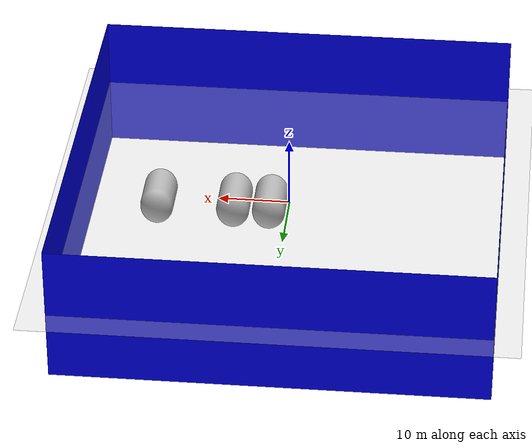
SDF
<sdf version="1.6">
 <world name="empty">
  <physics name="1ms" type="ignored">
   <max_step_size>0.001</max_step_size>
   <real_time_factor>1.0</real_time_factor>
  </physics>
  <plugin filename="ignition-gazebo-contact-system" name="ignition::gazebo::systems::Contact"/>
  <plugin filename="ignition-gazebo-physics-system" name="ignition::gazebo::systems::Physics"/>
  <plugin filename="ignition-gazebo-user-commands-system" name="ignition::gazebo::systems::UserCommands"/>
  <plugin filename="ignition-gazebo-scene-broadcaster-system" name="ignition::gazebo::systems::SceneBroadcaster"/>
  <plugin filename="ignition-gazebo-sensors-system" name="ignition::gazebo::systems::Sensors">
   <render_engine>ogre2</render_engine>
  </plugin>
  <plugin filename="ignition-gazebo-user-commands-system" name="ignition::gazebo::systems::UserCommands"/>
  <light type="directional" name="sun">
   <pose>0 0 10 0 0 0</pose>
   <diffuse>0.8 0.8 0.8 1</diffuse>
   <specular>0.2 0.2 0.2 1</specular>
   <attenuation>
    <range>1000</range>
    <constant>0.9</constant>
    <linear>0.01</linear>
    <quadratic>0.001</quadratic>
   </attenuation>
   <direction>-0.5 0.1 -0.9</direction>
  </light>
  <model name="ground_plane">
   <static>true</static>
   <link name="link">
    <collision name="collision">
     <geometry><plane><normal>0 0 1</normal><size>1000 1000</size></plane></geometry>
    </collision>
    <visual name="visual">
     <geometry><plane><normal>0 0 1</normal><size>1000 1000</size></plane></geometry>
     <material>
      <ambient>0.8 0.8 0.8 1</ambient>
      <diffuse>0.8 0.8 0.8 1</diffuse>
      <specular>0.8 0.8 0.8 1</specular>
     </material>
    </visual>
   </link>
  </model>
  <model name="tank">
   <static>true</static>
   <link name="body">
    <visual name="visual">
     <plugin filename="ignition-gazebo-label-system" name="ignition::gazebo::systems::Label">
      <label>100</label>
     </plugin>
     <geometry><mesh><scale>0.152352 0.101017 0.179365</scale><uri>meshes/tanks/tank_20.STL</uri></mesh></geometry>
    </visual>
   </link>
  </model>
  <model name="wall">
   <static>true</static>
   <pose>30 0 0 0 0 0</pose>
   <link name="box">
    <inertial>
     <mass>1.14395</mass>
     <inertia>
      <ixx>9.532917</ixx>
      <ixy>0</ixy>
      <ixz>0</ixz>
      <iyy>0.023832</iyy>
      <iyz>0</iyz>
      <izz>9.556749</izz>
     </inertia>
    </inertial>
    <visual name="visual">
     <geometry><box><size>0.01 60.0 20.0</size></box></geometry>
     <material>
      <ambient>0.0 0.0 1.0 1</ambient>
      <diffuse>0.0 0.0 1.0 1</diffuse>
      <specular>0.0 0.0 1.0 1</specular>
     </material>
    </visual>
    <collision name="collision"><geometry><box><size>0.5 10.0 2.0</size></box></geometry></collision>
    <sensor name="sensor_contact" type="contact"><contact><collision>collision</collision></contact></sensor>
   </link>
   <plugin filename="ignition-gazebo-touchplugin-system" name="ignition::gazebo::systems::TouchPlugin">
    <target>vehicle_blue</target>
    <namespace>wall</namespace>
    <time>0.001</time>
    <enabled>true</enabled>
   </plugin>
  </model>
  <model name="wall2">
   <static>true</static>
   <pose>0 30 0 0 0 0</pose>
   <link name="box">
    <inertial>
     <mass>1.14395</mass>
     <inertia>
      <ixx>9.532917</ixx>
      <ixy>0</ixy>
      <ixz>0</ixz>
      <iyy>0.023832</iyy>
      <iyz>0</iyz>
      <izz>9.556749</izz>
     </inertia>
    </inertial>
    <visual name="visual">
     <geometry><box><size>60.0 0.01 20.0</size></box></geometry>
     <material>
      <ambient>0.0 0.0 1.0 1</ambient>
      <diffuse>0.0 0.0 1.0 1</diffuse>
      <specular>0.0 0.0 1.0 1</specular>
     </material>
    </visual>
    <collision name="collision"><geometry><box><size>0.5 10.0 2.0</size></box></geometry></collision>
    <sensor name="sensor_contact" type="contact"><contact><collision>collision</collision></contact></sensor>
   </link>
   <plugin filename="ignition-gazebo-touchplugin-system" name="ignition::gazebo::systems::TouchPlugin">
    <target>vehicle_blue</target>
    <namespace>wall</namespace>
    <time>0.001</time>
    <enabled>true</enabled>
   </plugin>
  </model>
  <model name="wall3">
   <static>true</static>
   <pose>-30 0 0 0 0 0</pose>
   <link name="box">
    <inertial>
     <mass>1.14395</mass>
     <inertia>
      <ixx>9.532917</ixx>
      <ixy>0</ixy>
      <ixz>0</ixz>
      <iyy>0.023832</iyy>
      <iyz>0</iyz>
      <izz>9.556749</izz>
     </inertia>
    </inertial>
    <visual name="visual">
     <geometry><box><size>0.01 60.0 20.0</size></box></geometry>
     <material>
      <ambient>0.0 0.0 1.0 1</ambient>
      <diffuse>0.0 0.0 1.0 1</diffuse>
      <specular>0.0 0.0 1.0 1</specular>
     </material>
    </visual>
    <collision name="collision"><geometry><box><size>0.5 10.0 2.0</size></box></geometry></collision>
    <sensor name="sensor_contact" type="contact"><contact><collision>collision</collision></contact></sensor>
   </link>
   <plugin filename="ignition-gazebo-touchplugin-system" name="ignition::gazebo::systems::TouchPlugin">
    <target>vehicle_blue</target>
    <namespace>wall</namespace>
    <time>0.001</time>
    <enabled>true</enabled>
   </plugin>
  </model>
  <model name="wall4">
   <static>true</static>
   <pose>0 -30 0 0 0 0</pose>
   <link name="box">
    <inertial>
     <mass>1.14395</mass>
     <inertia>
      <ixx>9.532917</ixx>
      <ixy>0</ixy>
      <ixz>0</ixz>
      <iyy>0.023832</iyy>
      <iyz>0</iyz>
      <izz>9.556749</izz>
     </inertia>
    </inertial>
    <visual name="visual">
     <geometry><box><size>60.0 0.01 20.0</size></box></geometry>
     <material>
      <ambient>0.0 0.0 1.0 1</ambient>
      <diffuse>0.0 0.0 1.0 1</diffuse>
      <specular>0.0 0.0 1.0 1</specular>
     </material>
    </visual>
    <collision name="collision"><geometry><box><size>0.5 10.0 2.0</size></box></geometry></collision>
    <sensor name="sensor_contact" type="contact"><contact><collision>collision</collision></contact></sensor>
   </link>
   <plugin filename="ignition-gazebo-touchplugin-system" name="ignition::gazebo::systems::TouchPlugin">
    <target>vehicle_blue</target>
    <namespace>wall</namespace>
    <time>0.001</time>
    <enabled>true</enabled>
   </plugin>
  </model>
 </world>
</sdf>
